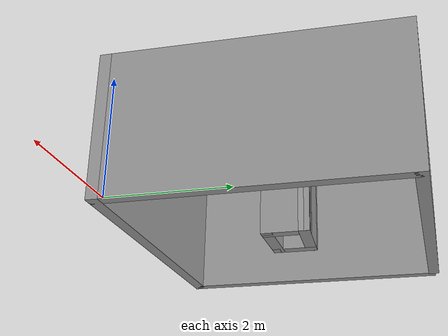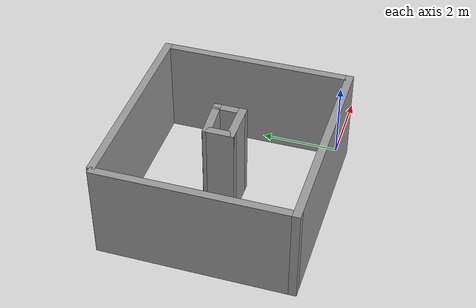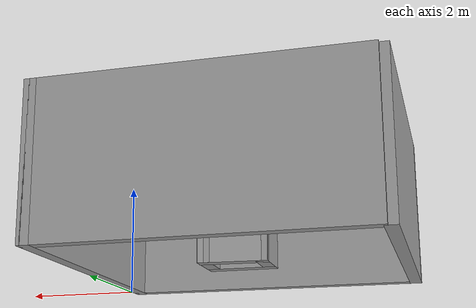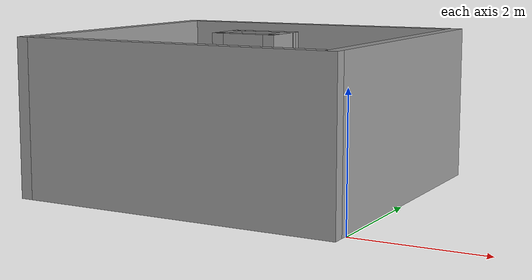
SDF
<?xml version='1.0'?>
<sdf version='1.4'>
  <model name='circularTrack'>
    <link name='Wall_20'>
      <collision name='Wall_20_Collision'>
        <geometry>
          <box>
            <size>5.1687 0.2 2.5</size>
          </box>
        </geometry>
        <pose>0 0 1.25 0 -0 0</pose>
      </collision>
      <visual name='Wall_20_Visual'>
        <pose>0 0 1.25 0 -0 0</pose>
        <geometry>
          <box>
            <size>5.1687 0.2 2.5</size>
          </box>
        </geometry>
        <material>
          <script>
            <uri>file://media/materials/scripts/gazebo.material</uri>
            <name>Gazebo/Grey</name>
          </script>
        </material>
      </visual>
      <velocity_decay>
        <linear>0</linear>
        <angular>0</angular>
      </velocity_decay>
      <pose>-2.60442 4.62548 0 0 -0 0</pose>
    </link>
    <link name='Wall_21'>
      <collision name='Wall_21_Collision'>
        <geometry>
          <box>
            <size>5.02674 0.2 2.5</size>
          </box>
        </geometry>
        <pose>0 0 1.25 0 -0 0</pose>
      </collision>
      <visual name='Wall_21_Visual'>
        <pose>0 0 1.25 0 -0 0</pose>
        <geometry>
          <box>
            <size>5.02674 0.2 2.5</size>
          </box>
        </geometry>
        <material>
          <script>
            <uri>file://media/materials/scripts/gazebo.material</uri>
            <name>Gazebo/Grey</name>
          </script>
        </material>
      </visual>
      <velocity_decay>
        <linear>0</linear>
        <angular>0</angular>
      </velocity_decay>
      <pose>-0.120065 2.21211 0 0 0 -1.5708</pose>
    </link>
    <link name='Wall_22'>
      <collision name='Wall_22_Collision'>
        <geometry>
          <box>
            <size>5.31067 0.2 2.5</size>
          </box>
        </geometry>
        <pose>0 0 1.25 0 -0 0</pose>
      </collision>
      <visual name='Wall_22_Visual'>
        <pose>0 0 1.25 0 -0 0</pose>
        <geometry>
          <box>
            <size>5.31067 0.2 2.5</size>
          </box>
        </geometry>
        <material>
          <script>
            <uri>file://media/materials/scripts/gazebo.material</uri>
            <name>Gazebo/Grey</name>
          </script>
        </material>
      </visual>
      <velocity_decay>
        <linear>0</linear>
        <angular>0</angular>
      </velocity_decay>
      <pose>-2.6754 -0.201262 0 0 -0 3.14159</pose>
    </link>
    <link name='Wall_23'>
      <collision name='Wall_23_Collision'>
        <geometry>
          <box>
            <size>4.95576 0.2 2.5</size>
          </box>
        </geometry>
        <pose>0 0 1.25 0 -0 0</pose>
      </collision>
      <visual name='Wall_23_Visual'>
        <pose>0 0 1.25 0 -0 0</pose>
        <geometry>
          <box>
            <size>4.95576 0.2 2.5</size>
          </box>
        </geometry>
        <material>
          <script>
            <uri>file://media/materials/scripts/gazebo.material</uri>
            <name>Gazebo/Grey</name>
          </script>
        </material>
      </visual>
      <velocity_decay>
        <linear>0</linear>
        <angular>0</angular>
      </velocity_decay>
      <pose>-5.23073 2.17662 0 0 -0 1.5708</pose>
    </link>
    <link name='Wall_25'>
      <collision name='Wall_25_Collision'>
        <geometry>
          <box>
            <size>0.787061 0.2 2.5</size>
          </box>
        </geometry>
        <pose>0 0 1.25 0 -0 0</pose>
      </collision>
      <visual name='Wall_25_Visual'>
        <pose>0 0 1.25 0 -0 0</pose>
        <geometry>
          <box>
            <size>0.787061 0.2 2.5</size>
          </box>
        </geometry>
        <material>
          <script>
            <uri>file://media/materials/scripts/gazebo.material</uri>
            <name>Gazebo/Grey</name>
          </script>
        </material>
      </visual>
      <velocity_decay>
        <linear>0</linear>
        <angular>0</angular>
      </velocity_decay>
      <pose>-3.09342 2.2601 0 0 0 -1.5708</pose>
    </link>
    <link name='Wall_26'>
      <collision name='Wall_26_Collision'>
        <geometry>
          <box>
            <size>1.10728 0.2 2.5</size>
          </box>
        </geometry>
        <pose>0 0 1.25 0 -0 0</pose>
      </collision>
      <visual name='Wall_26_Visual'>
        <pose>0 0 1.25 0 -0 0</pose>
        <geometry>
          <box>
            <size>1.10728 0.2 2.5</size>
          </box>
        </geometry>
        <material>
          <script>
            <uri>file://media/materials/scripts/gazebo.material</uri>
            <name>Gazebo/Grey</name>
          </script>
        </material>
      </visual>
      <velocity_decay>
        <linear>0</linear>
        <angular>0</angular>
      </velocity_decay>
      <pose>-2.63978 1.96657 0 0 -0 0</pose>
    </link>
    <link name='Wall_27'>
      <collision name='Wall_27_Collision'>
        <geometry>
          <box>
            <size>0.84043 0.2 2.5</size>
          </box>
        </geometry>
        <pose>0 0 1.25 0 -0 0</pose>
      </collision>
      <visual name='Wall_27_Visual'>
        <pose>0 0 1.25 0 -0 0</pose>
        <geometry>
          <box>
            <size>0.84043 0.2 2.5</size>
          </box>
        </geometry>
        <material>
          <script>
            <uri>file://media/materials/scripts/gazebo.material</uri>
            <name>Gazebo/Grey</name>
          </script>
        </material>
      </visual>
      <velocity_decay>
        <linear>0</linear>
        <angular>0</angular>
      </velocity_decay>
      <pose>-2.18614 2.28678 0 0 -0 1.5708</pose>
    </link>
    <link name='Wall_28'>
      <collision name='Wall_28_Collision'>
        <geometry>
          <box>
            <size>1.10884 0.2 2.5</size>
          </box>
        </geometry>
        <pose>0 0 1.25 0 -0 0</pose>
      </collision>
      <visual name='Wall_28_Visual'>
        <pose>0 0 1.25 0 -0 0</pose>
        <geometry>
          <box>
            <size>1.10884 0.2 2.5</size>
          </box>
        </geometry>
        <material>
          <script>
            <uri>file://media/materials/scripts/gazebo.material</uri>
            <name>Gazebo/Grey</name>
          </script>
        </material>
      </visual>
      <velocity_decay>
        <linear>0</linear>
        <angular>0</angular>
      </velocity_decay>
      <pose>-2.63978 2.58031 0 0 0 -3.08284</pose>
    </link>
    <static>1</static>
  </model>
</sdf>
